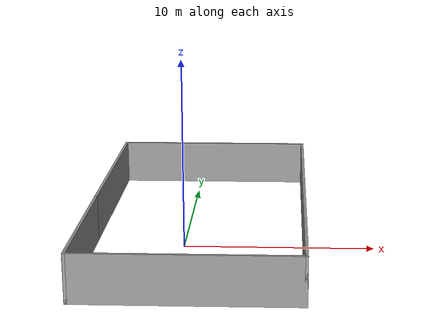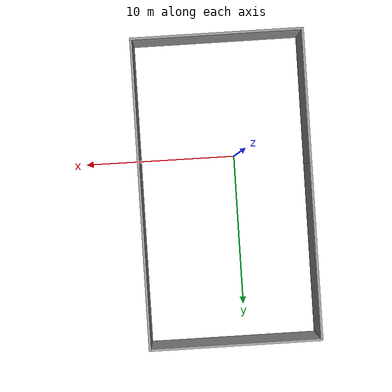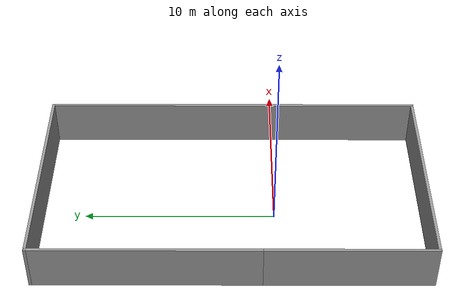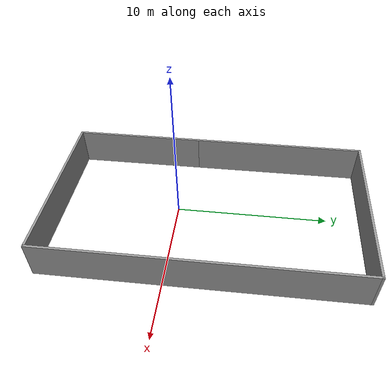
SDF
<?xml version='1.0'?>
<sdf version='1.6'>
  <model name='cafe2'>
    <pose frame=''>0.798087 2.20018 0 0 -0 0</pose>
    <link name='Wall_31'>
      <collision name='Wall_31_Collision'>
        <geometry>
          <box>
            <size>8.75 0.15 2.5</size>
          </box>
        </geometry>
        <pose frame=''>0 0 1.25 0 -0 0</pose>
      </collision>
      <visual name='Wall_31_Visual'>
        <pose frame=''>0 0 1.25 0 -0 0</pose>
        <geometry>
          <box>
            <size>8.75 0.15 2.5</size>
          </box>
        </geometry>
        <material>
          <script>
            <uri>file://media/materials/scripts/gazebo.material</uri>
            <name>Gazebo/Grey</name>
          </script>
          <ambient>1 1 1 1</ambient>
        </material>
        <meta>
          <layer>0</layer>
        </meta>
      </visual>
      <pose frame=''>-5.55 -5.75 0 0 -0 -1.5708</pose>
    </link>
    <link name='Wall_32'>
      <collision name='Wall_32_Collision'>
        <geometry>
          <box>
            <size>11.25 0.15 2.5</size>
          </box>
        </geometry>
        <pose frame=''>0 0 1.25 0 -0 0</pose>
      </collision>
      <visual name='Wall_32_Visual'>
        <pose frame=''>0 0 1.25 0 -0 0</pose>
        <geometry>
          <box>
            <size>11.25 0.15 2.5</size>
          </box>
        </geometry>
        <material>
          <script>
            <uri>file://media/materials/scripts/gazebo.material</uri>
            <name>Gazebo/Grey</name>
          </script>
          <ambient>1 1 1 1</ambient>
        </material>
        <meta>
          <layer>0</layer>
        </meta>
      </visual>
      <pose frame=''>-0 -10.05 0 0 -0 0</pose>
    </link>
    <link name='Wall_33'>
      <collision name='Wall_33_Collision'>
        <geometry>
          <box>
            <size>20.25 0.15 2.5</size>
          </box>
        </geometry>
        <pose frame=''>0 0 1.25 0 -0 0</pose>
      </collision>
      <visual name='Wall_33_Visual'>
        <pose frame=''>0 0 1.25 0 -0 0</pose>
        <geometry>
          <box>
            <size>20.25 0.15 2.5</size>
          </box>
        </geometry>
        <material>
          <script>
            <uri>file://media/materials/scripts/gazebo.material</uri>
            <name>Gazebo/Grey</name>
          </script>
          <ambient>1 1 1 1</ambient>
        </material>
        <meta>
          <layer>0</layer>
        </meta>
      </visual>
      <pose frame=''>5.55 0 0 0 -0 1.5708</pose>
    </link>
    <link name='Wall_34'>
      <collision name='Wall_34_Collision'>
        <geometry>
          <box>
            <size>11.25 0.15 2.5</size>
          </box>
        </geometry>
        <pose frame=''>0 0 1.25 0 -0 0</pose>
      </collision>
      <visual name='Wall_34_Visual'>
        <pose frame=''>0 0 1.25 0 -0 0</pose>
        <geometry>
          <box>
            <size>11.25 0.15 2.5</size>
          </box>
        </geometry>
        <material>
          <script>
            <uri>file://media/materials/scripts/gazebo.material</uri>
            <name>Gazebo/Grey</name>
          </script>
          <ambient>1 1 1 1</ambient>
        </material>
        <meta>
          <layer>0</layer>
        </meta>
      </visual>
      <pose frame=''>-0 10.05 0 0 -0 3.14159</pose>
    </link>
    <link name='Wall_35'>
      <collision name='Wall_35_Collision'>
        <geometry>
          <box>
            <size>11.65 0.15 2.5</size>
          </box>
        </geometry>
        <pose frame=''>0 0 1.25 0 -0 0</pose>
      </collision>
      <visual name='Wall_35_Visual'>
        <pose frame=''>0 0 1.25 0 -0 0</pose>
        <geometry>
          <box>
            <size>11.65 0.15 2.5</size>
          </box>
        </geometry>
        <material>
          <script>
            <uri>file://media/materials/scripts/gazebo.material</uri>
            <name>Gazebo/Grey</name>
          </script>
          <ambient>1 1 1 1</ambient>
        </material>
        <meta>
          <layer>0</layer>
        </meta>
      </visual>
      <pose frame=''>-5.55 4.3 0 0 -0 -1.5708</pose>
    </link>
    <static>1</static>
  </model>
</sdf>
